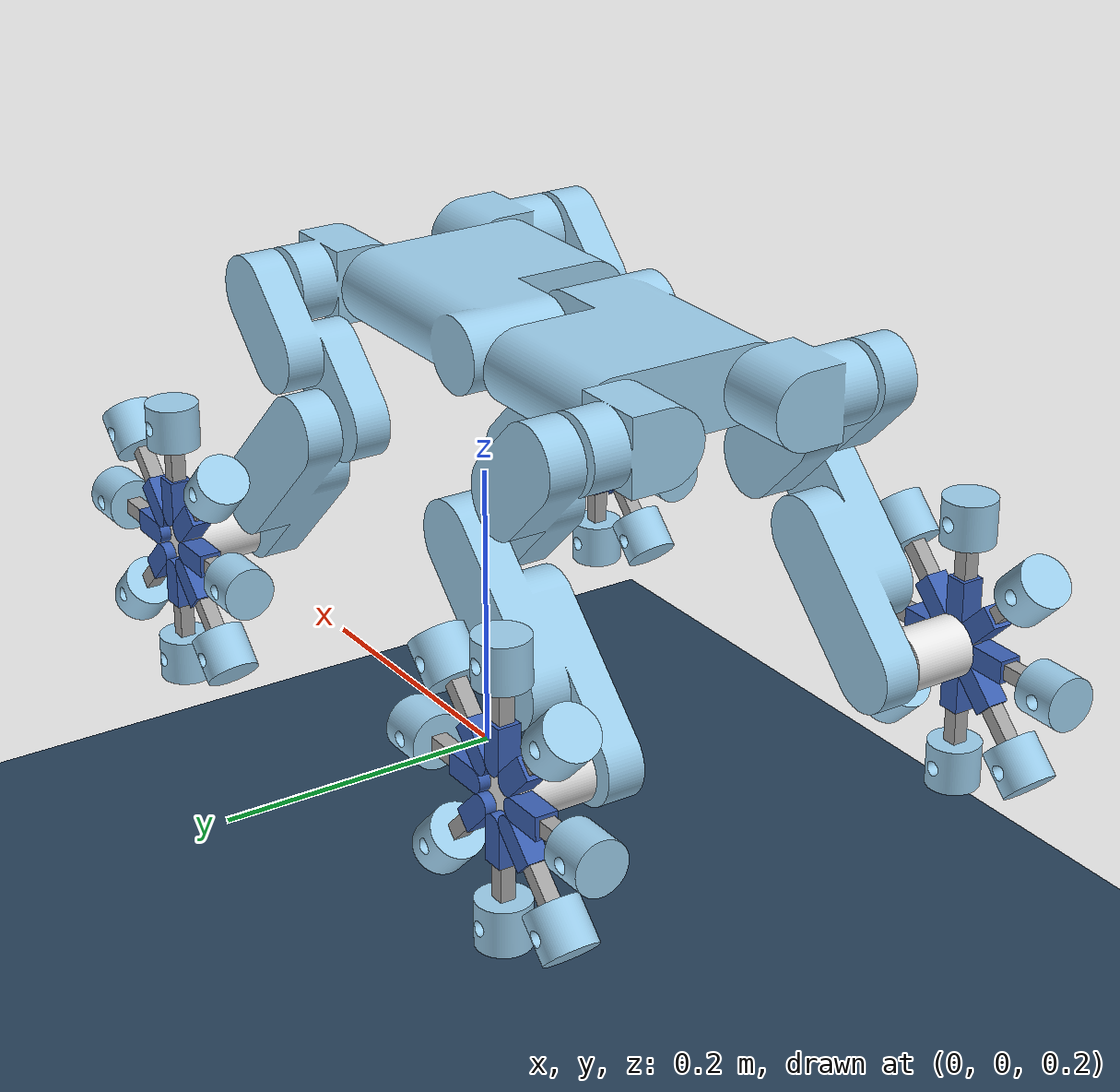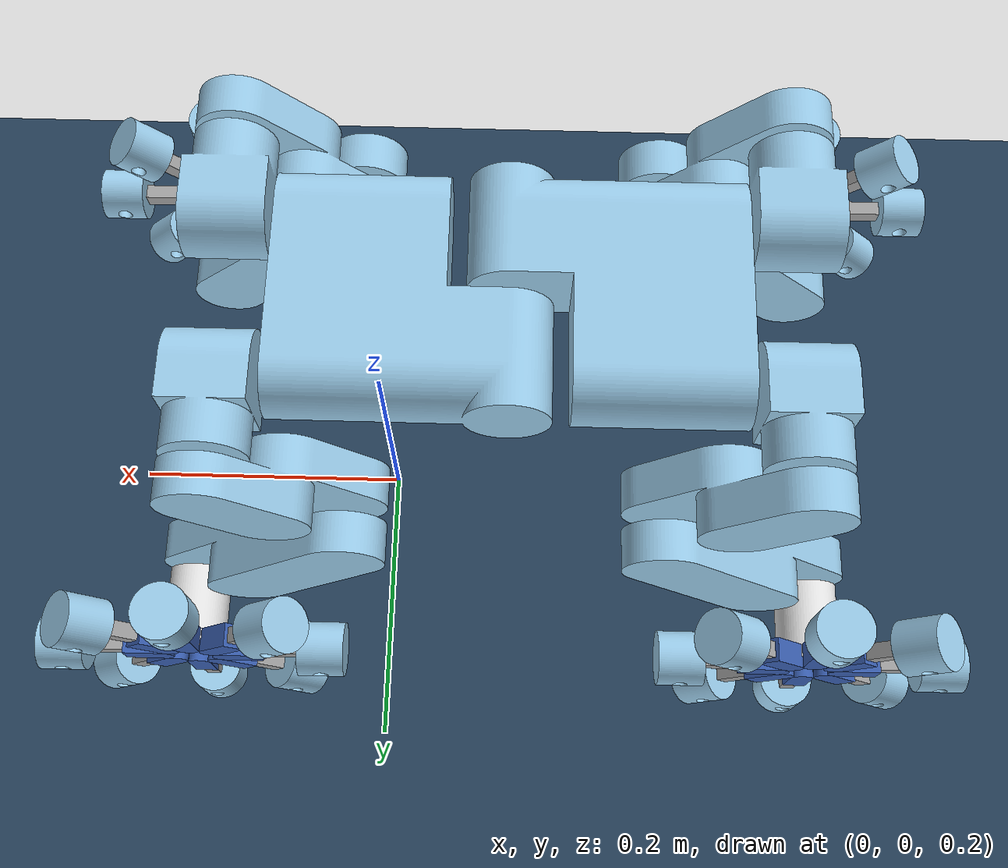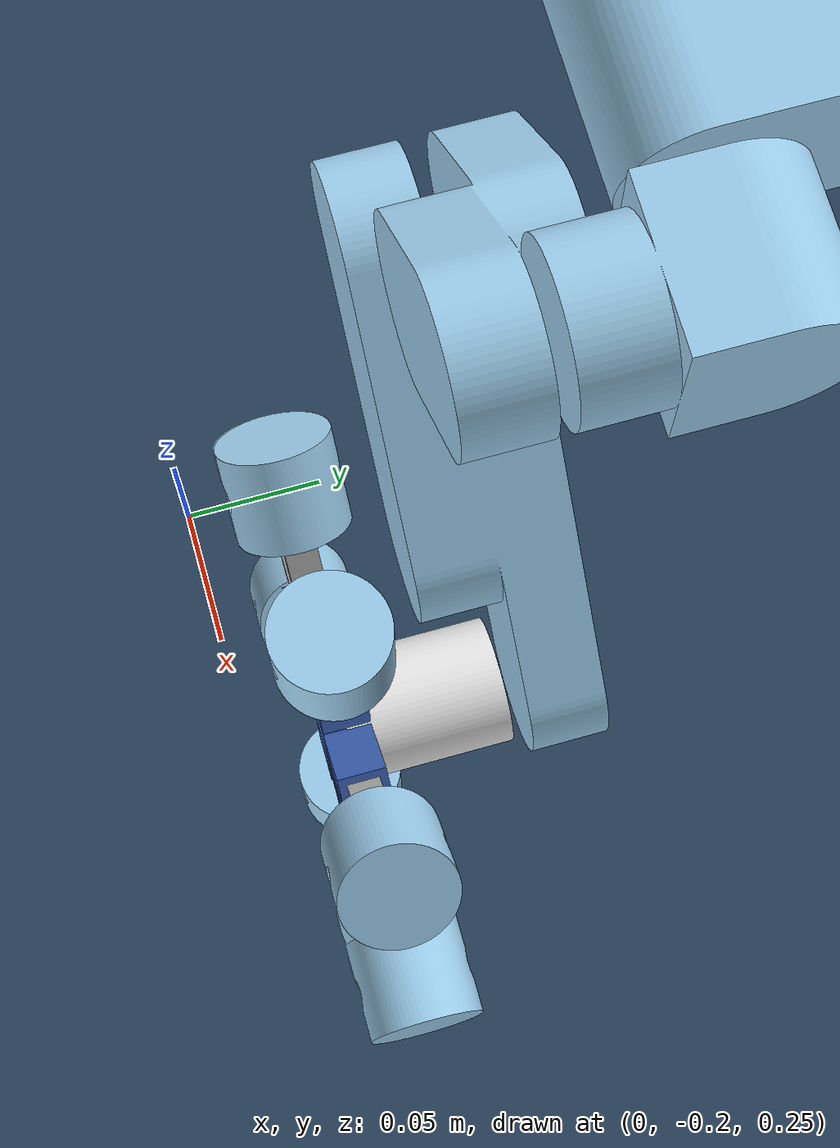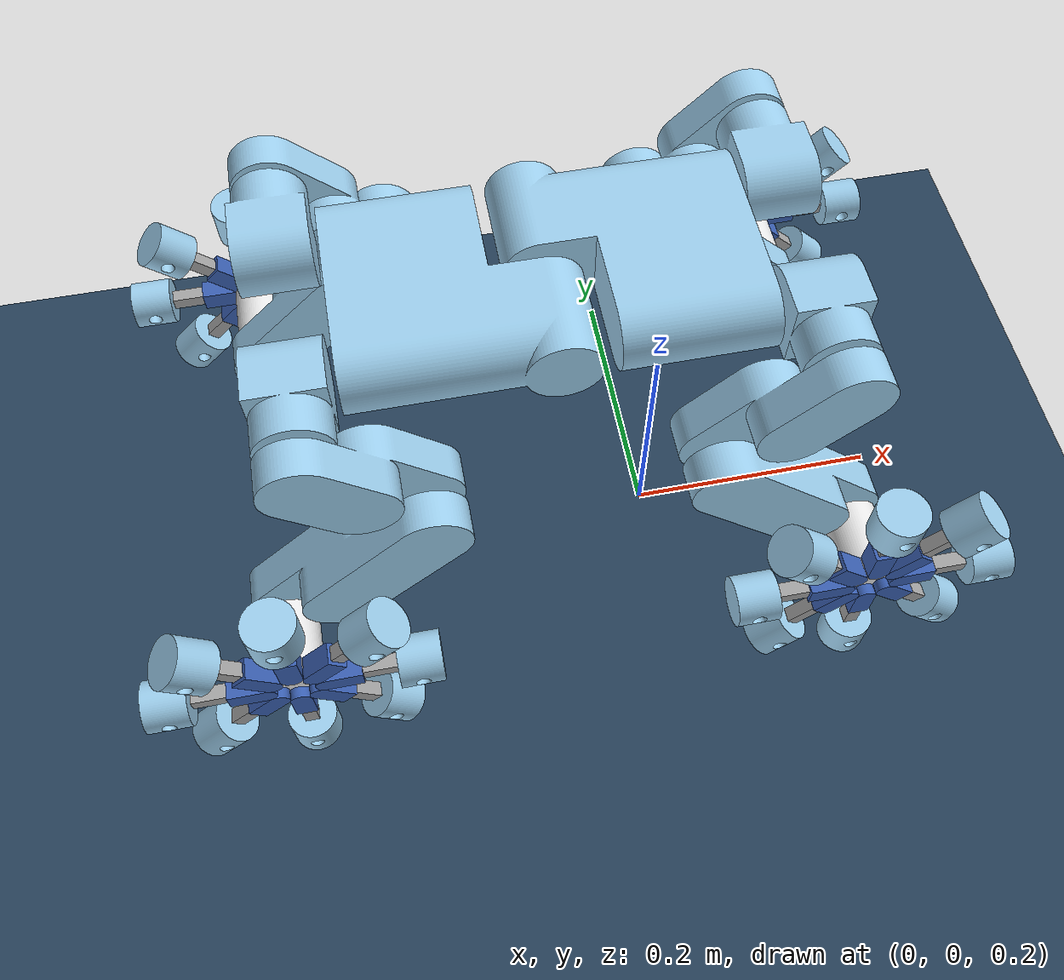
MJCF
<mujoco model="scene">
    <include file="robot_edited.xml" />

    <visual>
        <headlight diffuse="0.6 0.6 0.6" ambient="0.3 0.3 0.3" specular="0 0 0" />
        <rgba haze="0.15 0.25 0.35 1" />
        <global azimuth="160" elevation="-20" />
    </visual>

    <asset>
        <texture type="skybox" builtin="gradient" rgb1="0.3 0.5 0.7" rgb2="0 0 0" width="512"
            height="3072" />
        <texture type="2d" name="groundplane" builtin="checker" mark="edge" rgb1="0.2 0.3 0.4"
            rgb2="0.1 0.2 0.3"
            markrgb="0.8 0.8 0.8" width="300" height="300" />
        <material name="groundplane" texture="groundplane" texuniform="true" texrepeat="5 5"
            reflectance="0.2" />
    </asset>

    <worldbody>
        <light pos="0 0 3.5" dir="0 0 -1" directional="true" />
        <geom name="floor" size="0 0 0.05" pos="0 0 0" type="plane" material="groundplane" />
    </worldbody>
</mujoco>
